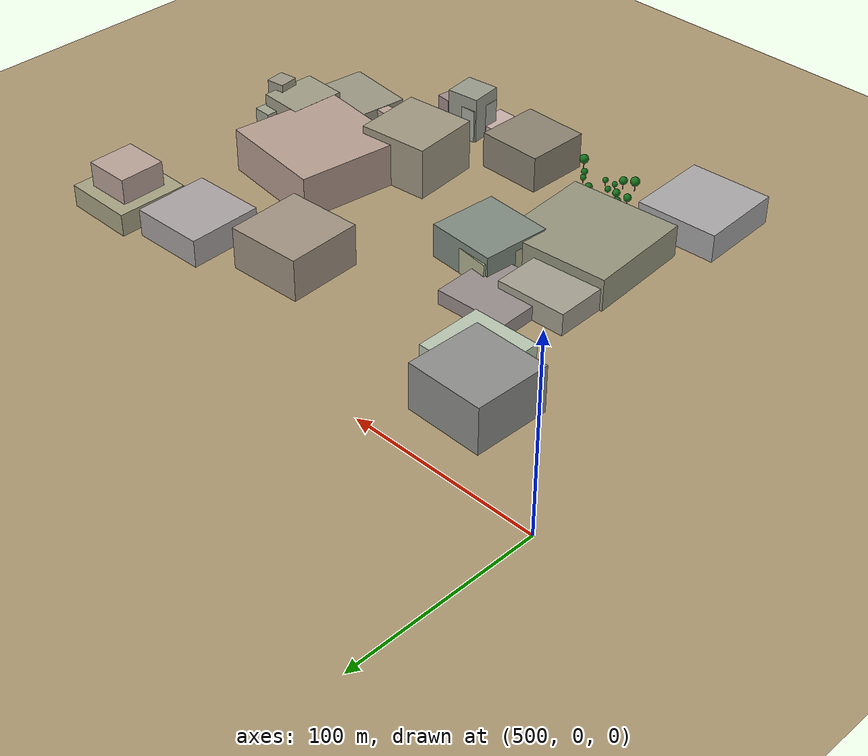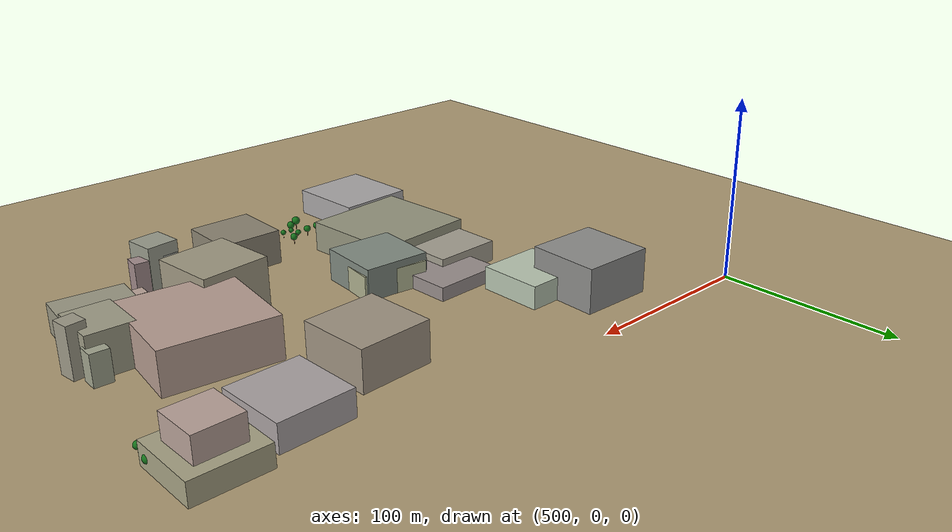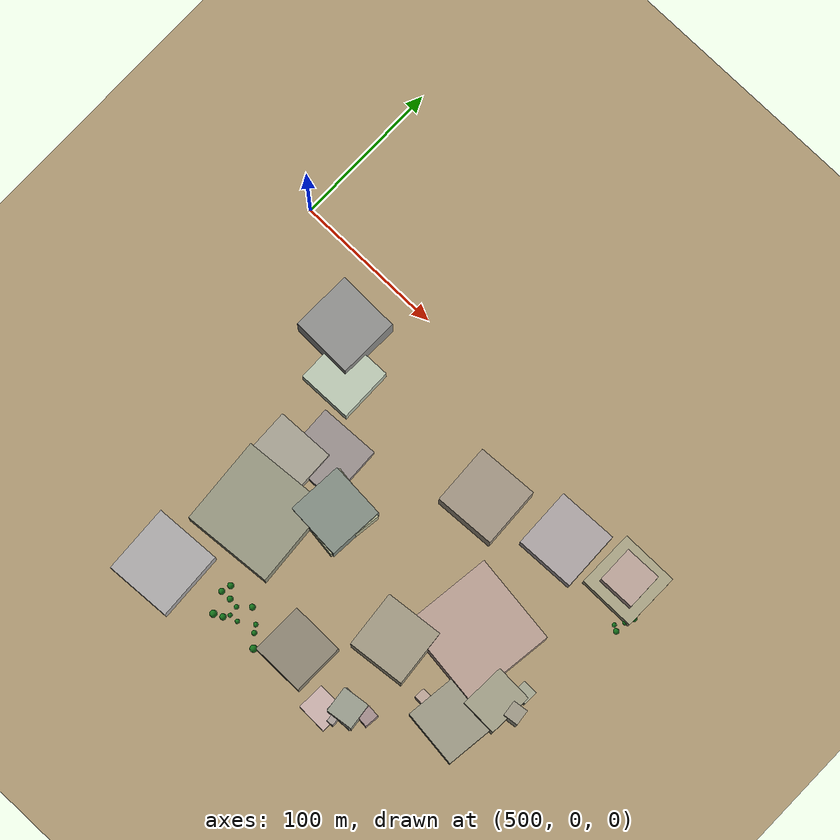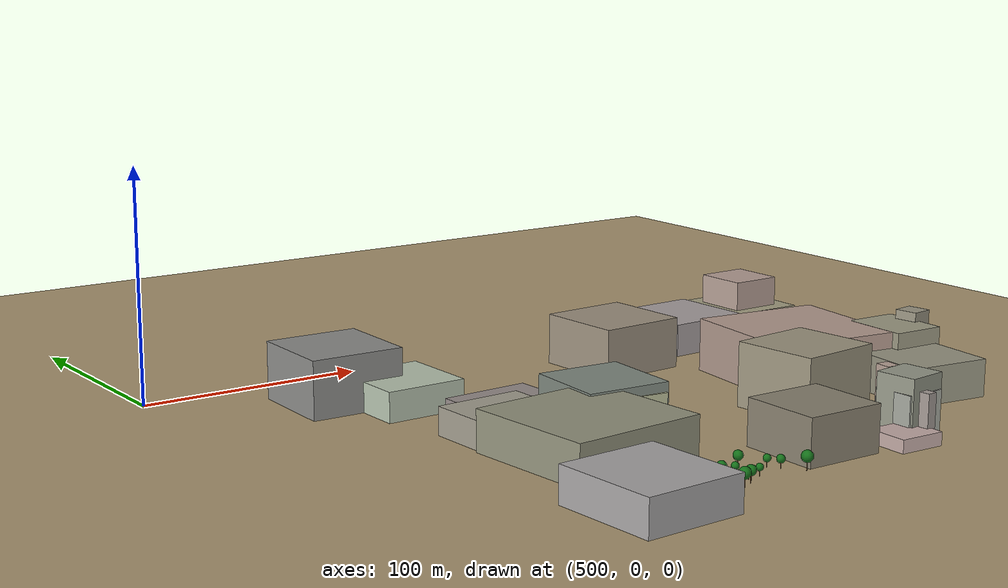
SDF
<sdf version="1.9">
 <world name="crossroad_world">
  <model name="ground_plane">
   <static>true</static>
   <pose>0 0 -0.05 0 0 0</pose>
   <link name="link">
    <collision name="collision">
     <geometry><plane><normal>0 0 1</normal><size>10000 10000</size></plane></geometry>
    </collision>
    <visual name="visual">
     <geometry><plane><normal>0 0 1</normal><size>15000 15000</size></plane></geometry>
     <material><ambient>0.68 0.60 0.45 1</ambient><diffuse>0.68 0.60 0.45 1</diffuse></material>
    </visual>
   </link>
  </model>
  <model name="tree_0">
   <static>true</static>
   <pose>624.872 -207.590 0 0 0 0</pose>
   <link name="link">
    <visual name="trunk">
     <pose>0 0 1.709 0 0 0</pose>
     <geometry><cylinder><radius>0.150</radius><length>3.419</length></cylinder></geometry>
     <material><ambient>0.38 0.22 0.08 1</ambient><diffuse>0.38 0.22 0.08 1</diffuse></material>
    </visual>
    <visual name="canopy">
     <pose>0 0 4.738 0 0 0</pose>
     <geometry><sphere><radius>2.030</radius></sphere></geometry>
     <material><ambient>0.08 0.44 0.10 1</ambient><diffuse>0.08 0.44 0.10 1</diffuse></material>
    </visual>
    <collision name="col">
     <pose>0 0 1.709 0 0 0</pose>
     <geometry><cylinder><radius>0.150</radius><length>3.419</length></cylinder></geometry>
    </collision>
   </link>
  </model>
  <model name="tree_4">
   <static>true</static>
   <pose>645.095 -201.672 0 0 0 0</pose>
   <link name="link">
    <visual name="trunk">
     <pose>0 0 1.697 0 0 0</pose>
     <geometry><cylinder><radius>0.149</radius><length>3.395</length></cylinder></geometry>
     <material><ambient>0.38 0.22 0.08 1</ambient><diffuse>0.38 0.22 0.08 1</diffuse></material>
    </visual>
    <visual name="canopy">
     <pose>0 0 4.705 0 0 0</pose>
     <geometry><sphere><radius>2.016</radius></sphere></geometry>
     <material><ambient>0.08 0.44 0.10 1</ambient><diffuse>0.08 0.44 0.10 1</diffuse></material>
    </visual>
    <collision name="col">
     <pose>0 0 1.697 0 0 0</pose>
     <geometry><cylinder><radius>0.149</radius><length>3.395</length></cylinder></geometry>
    </collision>
   </link>
  </model>
  <model name="tree_9">
   <static>true</static>
   <pose>656.670 -212.168 0 0 0 0</pose>
   <link name="link">
    <visual name="trunk">
     <pose>0 0 1.434 0 0 0</pose>
     <geometry><cylinder><radius>0.125</radius><length>2.867</length></cylinder></geometry>
     <material><ambient>0.38 0.22 0.08 1</ambient><diffuse>0.38 0.22 0.08 1</diffuse></material>
    </visual>
    <visual name="canopy">
     <pose>0 0 3.974 0 0 0</pose>
     <geometry><sphere><radius>1.703</radius></sphere></geometry>
     <material><ambient>0.08 0.44 0.10 1</ambient><diffuse>0.08 0.44 0.10 1</diffuse></material>
    </visual>
    <collision name="col">
     <pose>0 0 1.434 0 0 0</pose>
     <geometry><cylinder><radius>0.125</radius><length>2.867</length></cylinder></geometry>
    </collision>
   </link>
  </model>
  <model name="tree_10">
   <static>true</static>
   <pose>653.817 -207.828 0 0 0 0</pose>
   <link name="link">
    <visual name="trunk">
     <pose>0 0 1.315 0 0 0</pose>
     <geometry><cylinder><radius>0.115</radius><length>2.630</length></cylinder></geometry>
     <material><ambient>0.38 0.22 0.08 1</ambient><diffuse>0.38 0.22 0.08 1</diffuse></material>
    </visual>
    <visual name="canopy">
     <pose>0 0 3.645 0 0 0</pose>
     <geometry><sphere><radius>1.562</radius></sphere></geometry>
     <material><ambient>0.08 0.44 0.10 1</ambient><diffuse>0.08 0.44 0.10 1</diffuse></material>
    </visual>
    <collision name="col">
     <pose>0 0 1.315 0 0 0</pose>
     <geometry><cylinder><radius>0.115</radius><length>2.630</length></cylinder></geometry>
    </collision>
   </link>
  </model>
  <model name="tree_11">
   <static>true</static>
   <pose>636.269 -218.183 0 0 0 0</pose>
   <link name="link">
    <visual name="trunk">
     <pose>0 0 1.768 0 0 0</pose>
     <geometry><cylinder><radius>0.155</radius><length>3.536</length></cylinder></geometry>
     <material><ambient>0.38 0.22 0.08 1</ambient><diffuse>0.38 0.22 0.08 1</diffuse></material>
    </visual>
    <visual name="canopy">
     <pose>0 0 4.901 0 0 0</pose>
     <geometry><sphere><radius>2.100</radius></sphere></geometry>
     <material><ambient>0.08 0.44 0.10 1</ambient><diffuse>0.08 0.44 0.10 1</diffuse></material>
    </visual>
    <collision name="col">
     <pose>0 0 1.768 0 0 0</pose>
     <geometry><cylinder><radius>0.155</radius><length>3.536</length></cylinder></geometry>
    </collision>
   </link>
  </model>
  <model name="tree_13">
   <static>true</static>
   <pose>663.092 -219.238 0 0 0 0</pose>
   <link name="link">
    <visual name="trunk">
     <pose>0 0 2.018 0 0 0</pose>
     <geometry><cylinder><radius>0.177</radius><length>4.035</length></cylinder></geometry>
     <material><ambient>0.38 0.22 0.08 1</ambient><diffuse>0.38 0.22 0.08 1</diffuse></material>
    </visual>
    <visual name="canopy">
     <pose>0 0 5.592 0 0 0</pose>
     <geometry><sphere><radius>2.396</radius></sphere></geometry>
     <material><ambient>0.08 0.44 0.10 1</ambient><diffuse>0.08 0.44 0.10 1</diffuse></material>
    </visual>
    <collision name="col">
     <pose>0 0 2.018 0 0 0</pose>
     <geometry><cylinder><radius>0.177</radius><length>4.035</length></cylinder></geometry>
    </collision>
   </link>
  </model>
  <model name="tree_14">
   <static>true</static>
   <pose>630.842 -220.823 0 0 0 0</pose>
   <link name="link">
    <visual name="trunk">
     <pose>0 0 2.023 0 0 0</pose>
     <geometry><cylinder><radius>0.177</radius><length>4.047</length></cylinder></geometry>
     <material><ambient>0.38 0.22 0.08 1</ambient><diffuse>0.38 0.22 0.08 1</diffuse></material>
    </visual>
    <visual name="canopy">
     <pose>0 0 5.609 0 0 0</pose>
     <geometry><sphere><radius>2.403</radius></sphere></geometry>
     <material><ambient>0.08 0.44 0.10 1</ambient><diffuse>0.08 0.44 0.10 1</diffuse></material>
    </visual>
    <collision name="col">
     <pose>0 0 2.023 0 0 0</pose>
     <geometry><cylinder><radius>0.177</radius><length>4.047</length></cylinder></geometry>
    </collision>
   </link>
  </model>
  <model name="tree_15">
   <static>true</static>
   <pose>638.664 -214.444 0 0 0 0</pose>
   <link name="link">
    <visual name="trunk">
     <pose>0 0 1.208 0 0 0</pose>
     <geometry><cylinder><radius>0.106</radius><length>2.416</length></cylinder></geometry>
     <material><ambient>0.38 0.22 0.08 1</ambient><diffuse>0.38 0.22 0.08 1</diffuse></material>
    </visual>
    <visual name="canopy">
     <pose>0 0 3.349 0 0 0</pose>
     <geometry><sphere><radius>1.435</radius></sphere></geometry>
     <material><ambient>0.08 0.44 0.10 1</ambient><diffuse>0.08 0.44 0.10 1</diffuse></material>
    </visual>
    <collision name="col">
     <pose>0 0 1.208 0 0 0</pose>
     <geometry><cylinder><radius>0.106</radius><length>2.416</length></cylinder></geometry>
    </collision>
   </link>
  </model>
  <model name="tree_16">
   <static>true</static>
   <pose>626.495 -201.350 0 0 0 0</pose>
   <link name="link">
    <visual name="trunk">
     <pose>0 0 1.747 0 0 0</pose>
     <geometry><cylinder><radius>0.153</radius><length>3.493</length></cylinder></geometry>
     <material><ambient>0.38 0.22 0.08 1</ambient><diffuse>0.38 0.22 0.08 1</diffuse></material>
    </visual>
    <visual name="canopy">
     <pose>0 0 4.841 0 0 0</pose>
     <geometry><sphere><radius>2.074</radius></sphere></geometry>
     <material><ambient>0.08 0.44 0.10 1</ambient><diffuse>0.08 0.44 0.10 1</diffuse></material>
    </visual>
    <collision name="col">
     <pose>0 0 1.747 0 0 0</pose>
     <geometry><cylinder><radius>0.153</radius><length>3.493</length></cylinder></geometry>
    </collision>
   </link>
  </model>
  <model name="tree_20">
   <static>true</static>
   <pose>631.842 -207.384 0 0 0 0</pose>
   <link name="link">
    <visual name="trunk">
     <pose>0 0 1.645 0 0 0</pose>
     <geometry><cylinder><radius>0.144</radius><length>3.290</length></cylinder></geometry>
     <material><ambient>0.38 0.22 0.08 1</ambient><diffuse>0.38 0.22 0.08 1</diffuse></material>
    </visual>
    <visual name="canopy">
     <pose>0 0 4.560 0 0 0</pose>
     <geometry><sphere><radius>1.954</radius></sphere></geometry>
     <material><ambient>0.08 0.44 0.10 1</ambient><diffuse>0.08 0.44 0.10 1</diffuse></material>
    </visual>
    <collision name="col">
     <pose>0 0 1.645 0 0 0</pose>
     <geometry><cylinder><radius>0.144</radius><length>3.290</length></cylinder></geometry>
    </collision>
   </link>
  </model>
  <model name="tree_21">
   <static>true</static>
   <pose>637.869 -208.153 0 0 0 0</pose>
   <link name="link">
    <visual name="trunk">
     <pose>0 0 1.317 0 0 0</pose>
     <geometry><cylinder><radius>0.115</radius><length>2.633</length></cylinder></geometry>
     <material><ambient>0.38 0.22 0.08 1</ambient><diffuse>0.38 0.22 0.08 1</diffuse></material>
    </visual>
    <visual name="canopy">
     <pose>0 0 3.649 0 0 0</pose>
     <geometry><sphere><radius>1.563</radius></sphere></geometry>
     <material><ambient>0.08 0.44 0.10 1</ambient><diffuse>0.08 0.44 0.10 1</diffuse></material>
    </visual>
    <collision name="col">
     <pose>0 0 1.317 0 0 0</pose>
     <geometry><cylinder><radius>0.115</radius><length>2.633</length></cylinder></geometry>
    </collision>
   </link>
  </model>
  <model name="tree_23">
   <static>true</static>
   <pose>644.361 -214.057 0 0 0 0</pose>
   <link name="link">
    <visual name="trunk">
     <pose>0 0 1.261 0 0 0</pose>
     <geometry><cylinder><radius>0.110</radius><length>2.521</length></cylinder></geometry>
     <material><ambient>0.38 0.22 0.08 1</ambient><diffuse>0.38 0.22 0.08 1</diffuse></material>
    </visual>
    <visual name="canopy">
     <pose>0 0 3.494 0 0 0</pose>
     <geometry><sphere><radius>1.497</radius></sphere></geometry>
     <material><ambient>0.08 0.44 0.10 1</ambient><diffuse>0.08 0.44 0.10 1</diffuse></material>
    </visual>
    <collision name="col">
     <pose>0 0 1.261 0 0 0</pose>
     <geometry><cylinder><radius>0.110</radius><length>2.521</length></cylinder></geometry>
    </collision>
   </link>
  </model>
  <model name="tree_25">
   <static>true</static>
   <pose>810.908 -58.291 0 0 0 0</pose>
   <link name="link">
    <visual name="trunk">
     <pose>0 0 1.234 0 0 0</pose>
     <geometry><cylinder><radius>0.108</radius><length>2.468</length></cylinder></geometry>
     <material><ambient>0.38 0.22 0.08 1</ambient><diffuse>0.38 0.22 0.08 1</diffuse></material>
    </visual>
    <visual name="canopy">
     <pose>0 0 3.421 0 0 0</pose>
     <geometry><sphere><radius>1.465</radius></sphere></geometry>
     <material><ambient>0.08 0.44 0.10 1</ambient><diffuse>0.08 0.44 0.10 1</diffuse></material>
    </visual>
    <collision name="col">
     <pose>0 0 1.234 0 0 0</pose>
     <geometry><cylinder><radius>0.108</radius><length>2.468</length></cylinder></geometry>
    </collision>
   </link>
  </model>
  <model name="tree_26">
   <static>true</static>
   <pose>814.380 -60.438 0 0 0 0</pose>
   <link name="link">
    <visual name="trunk">
     <pose>0 0 1.614 0 0 0</pose>
     <geometry><cylinder><radius>0.141</radius><length>3.228</length></cylinder></geometry>
     <material><ambient>0.38 0.22 0.08 1</ambient><diffuse>0.38 0.22 0.08 1</diffuse></material>
    </visual>
    <visual name="canopy">
     <pose>0 0 4.474 0 0 0</pose>
     <geometry><sphere><radius>1.917</radius></sphere></geometry>
     <material><ambient>0.08 0.44 0.10 1</ambient><diffuse>0.08 0.44 0.10 1</diffuse></material>
    </visual>
    <collision name="col">
     <pose>0 0 1.614 0 0 0</pose>
     <geometry><cylinder><radius>0.141</radius><length>3.228</length></cylinder></geometry>
    </collision>
   </link>
  </model>
  <model name="tree_27">
   <static>true</static>
   <pose>814.600 -52.722 0 0 0 0</pose>
   <link name="link">
    <visual name="trunk">
     <pose>0 0 1.376 0 0 0</pose>
     <geometry><cylinder><radius>0.120</radius><length>2.751</length></cylinder></geometry>
     <material><ambient>0.38 0.22 0.08 1</ambient><diffuse>0.38 0.22 0.08 1</diffuse></material>
    </visual>
    <visual name="canopy">
     <pose>0 0 3.813 0 0 0</pose>
     <geometry><sphere><radius>1.634</radius></sphere></geometry>
     <material><ambient>0.08 0.44 0.10 1</ambient><diffuse>0.08 0.44 0.10 1</diffuse></material>
    </visual>
    <collision name="col">
     <pose>0 0 1.376 0 0 0</pose>
     <geometry><cylinder><radius>0.120</radius><length>2.751</length></cylinder></geometry>
    </collision>
   </link>
  </model>
  <model name="tree_28">
   <static>true</static>
   <pose>816.436 -47.377 0 0 0 0</pose>
   <link name="link">
    <visual name="trunk">
     <pose>0 0 2.008 0 0 0</pose>
     <geometry><cylinder><radius>0.176</radius><length>4.016</length></cylinder></geometry>
     <material><ambient>0.38 0.22 0.08 1</ambient><diffuse>0.38 0.22 0.08 1</diffuse></material>
    </visual>
    <visual name="canopy">
     <pose>0 0 5.567 0 0 0</pose>
     <geometry><sphere><radius>2.385</radius></sphere></geometry>
     <material><ambient>0.08 0.44 0.10 1</ambient><diffuse>0.08 0.44 0.10 1</diffuse></material>
    </visual>
    <collision name="col">
     <pose>0 0 2.008 0 0 0</pose>
     <geometry><cylinder><radius>0.176</radius><length>4.016</length></cylinder></geometry>
    </collision>
   </link>
  </model>
  <model name="building_140">
   <static>true</static>
   <pose>683.294 -201.566 9.810 0 0 -0.013</pose>
   <link name="link">
    <visual name="body">
     <geometry><box><size>35.34 34.63 19.62</size></box></geometry>
     <material><ambient>0.55 0.52 0.45 1</ambient><diffuse>0.55 0.52 0.45 1</diffuse></material>
    </visual>
    <collision name="col"><geometry><box><size>35.34 34.63 19.62</size></box></geometry></collision>
   </link>
  </model>
  <model name="building_141">
   <static>true</static>
   <pose>717.905 -216.568 2.789 0 0 -0.039</pose>
   <link name="link">
    <visual name="body">
     <geometry><box><size>20.39 18.28 5.58</size></box></geometry>
     <material><ambient>0.79 0.69 0.67 1</ambient><diffuse>0.79 0.69 0.67 1</diffuse></material>
    </visual>
    <collision name="col"><geometry><box><size>20.39 18.28 5.58</size></box></geometry></collision>
   </link>
  </model>
  <model name="building_150">
   <static>true</static>
   <pose>804.292 -139.679 13.791 0 0 0.124</pose>
   <link name="link">
    <visual name="body">
     <geometry><box><size>10.01 10.45 27.58</size></box></geometry>
     <material><ambient>0.62 0.60 0.53 1</ambient><diffuse>0.62 0.60 0.53 1</diffuse></material>
    </visual>
    <collision name="col"><geometry><box><size>10.01 10.45 27.58</size></box></geometry></collision>
   </link>
  </model>
  <model name="building_151">
   <static>true</static>
   <pose>799.862 -126.282 8.564 0 0 -0.030</pose>
   <link name="link">
    <visual name="body">
     <geometry><box><size>9.85 9.45 17.13</size></box></geometry>
     <material><ambient>0.64 0.65 0.56 1</ambient><diffuse>0.64 0.65 0.56 1</diffuse></material>
    </visual>
    <collision name="col"><geometry><box><size>9.85 9.45 17.13</size></box></geometry></collision>
   </link>
  </model>
  <model name="building_152">
   <static>true</static>
   <pose>790.779 -141.961 11.738 0 0 -0.044</pose>
   <link name="link">
    <visual name="body">
     <geometry><box><size>24.54 29.70 23.48</size></box></geometry>
     <material><ambient>0.63 0.62 0.53 1</ambient><diffuse>0.63 0.62 0.53 1</diffuse></material>
    </visual>
    <collision name="col"><geometry><box><size>24.54 29.70 23.48</size></box></geometry></collision>
   </link>
  </model>
  <model name="building_153">
   <static>true</static>
   <pose>757.659 -170.100 8.039 0 0 -0.065</pose>
   <link name="link">
    <visual name="body">
     <geometry><box><size>7.22 7.19 16.08</size></box></geometry>
     <material><ambient>0.74 0.65 0.60 1</ambient><diffuse>0.74 0.65 0.60 1</diffuse></material>
    </visual>
    <collision name="col"><geometry><box><size>7.22 7.19 16.08</size></box></geometry></collision>
   </link>
  </model>
  <model name="building_154">
   <static>true</static>
   <pose>779.830 -166.339 8.183 0 0 -0.120</pose>
   <link name="link">
    <visual name="body">
     <geometry><box><size>38.37 39.12 16.37</size></box></geometry>
     <material><ambient>0.61 0.60 0.52 1</ambient><diffuse>0.61 0.60 0.52 1</diffuse></material>
    </visual>
    <collision name="col"><geometry><box><size>38.37 39.12 16.37</size></box></geometry></collision>
   </link>
  </model>
  <model name="building_195">
   <static>true</static>
   <pose>641.847 -125.631 7.069 0 0 -0.134</pose>
   <link name="link">
    <visual name="body">
     <geometry><box><size>37.46 36.99 14.14</size></box></geometry>
     <material><ambient>0.71 0.72 0.58 1</ambient><diffuse>0.71 0.72 0.58 1</diffuse></material>
    </visual>
    <collision name="col"><geometry><box><size>37.46 36.99 14.14</size></box></geometry></collision>
   </link>
  </model>
  <model name="building_196">
   <static>true</static>
   <pose>641.847 -125.631 9.126 0 0 -0.069</pose>
   <link name="link">
    <visual name="body">
     <geometry><box><size>37.46 36.99 18.25</size></box></geometry>
     <material><ambient>0.51 0.55 0.51 1</ambient><diffuse>0.51 0.55 0.51 1</diffuse></material>
    </visual>
    <collision name="col"><geometry><box><size>37.46 36.99 18.25</size></box></geometry></collision>
   </link>
  </model>
  <model name="building_353">
   <static>true</static>
   <pose>798.478 -33.645 12.727 0 0 0.013</pose>
   <link name="link">
    <visual name="body">
     <geometry><box><size>24.51 24.46 25.45</size></box></geometry>
     <material><ambient>0.73 0.64 0.60 1</ambient><diffuse>0.73 0.64 0.60 1</diffuse></material>
    </visual>
    <collision name="col"><geometry><box><size>24.51 24.46 25.45</size></box></geometry></collision>
   </link>
  </model>
  <model name="building_358">
   <static>true</static>
   <pose>729.810 -206.387 12.470 0 0 0.116</pose>
   <link name="link">
    <visual name="body">
     <geometry><box><size>17.89 17.54 24.94</size></box></geometry>
     <material><ambient>0.60 0.61 0.55 1</ambient><diffuse>0.60 0.61 0.55 1</diffuse></material>
    </visual>
    <collision name="col"><geometry><box><size>17.89 17.54 24.94</size></box></geometry></collision>
   </link>
  </model>
  <model name="building_359">
   <static>true</static>
   <pose>729.810 -206.387 9.096 0 0 0.019</pose>
   <link name="link">
    <visual name="body">
     <geometry><box><size>17.89 17.54 18.19</size></box></geometry>
     <material><ambient>0.67 0.68 0.64 1</ambient><diffuse>0.67 0.68 0.64 1</diffuse></material>
    </visual>
    <collision name="col"><geometry><box><size>17.89 17.54 18.19</size></box></geometry></collision>
   </link>
  </model>
  <model name="building_360">
   <static>true</static>
   <pose>741.468 -201.593 9.158 0 0 -0.099</pose>
   <link name="link">
    <visual name="body">
     <geometry><box><size>7.97 9.62 18.32</size></box></geometry>
     <material><ambient>0.64 0.55 0.55 1</ambient><diffuse>0.64 0.55 0.55 1</diffuse></material>
    </visual>
    <collision name="col"><geometry><box><size>7.97 9.62 18.32</size></box></geometry></collision>
   </link>
  </model>
  <model name="building_361">
   <static>true</static>
   <pose>727.842 -218.023 9.729 0 0 0.079</pose>
   <link name="link">
    <visual name="body">
     <geometry><box><size>4.50 4.45 19.46</size></box></geometry>
     <material><ambient>0.66 0.62 0.60 1</ambient><diffuse>0.66 0.62 0.60 1</diffuse></material>
    </visual>
    <collision name="col"><geometry><box><size>4.50 4.45 19.46</size></box></geometry></collision>
   </link>
  </model>
  <model name="building_638">
   <static>true</static>
   <pose>608.400 -158.281 8.673 0 0 0.074</pose>
   <link name="link">
    <visual name="body">
     <geometry><box><size>60.00 58.64 17.35</size></box></geometry>
     <material><ambient>0.59 0.59 0.50 1</ambient><diffuse>0.59 0.59 0.50 1</diffuse></material>
    </visual>
    <collision name="col"><geometry><box><size>60.00 58.64 17.35</size></box></geometry></collision>
   </link>
  </model>
  <model name="building_639">
   <static>true</static>
   <pose>596.611 -122.459 5.966 0 0 0.031</pose>
   <link name="link">
    <visual name="body">
     <geometry><box><size>38.21 37.37 11.93</size></box></geometry>
     <material><ambient>0.65 0.63 0.57 1</ambient><diffuse>0.65 0.63 0.57 1</diffuse></material>
    </visual>
    <collision name="col"><geometry><box><size>38.21 37.37 11.93</size></box></geometry></collision>
   </link>
  </model>
  <model name="building_640">
   <static>true</static>
   <pose>798.544 -33.656 5.971 0 0 -0.005</pose>
   <link name="link">
    <visual name="body">
     <geometry><box><size>38.28 38.24 11.94</size></box></geometry>
     <material><ambient>0.66 0.64 0.52 1</ambient><diffuse>0.66 0.64 0.52 1</diffuse></material>
    </visual>
    <collision name="col"><geometry><box><size>38.28 38.24 11.94</size></box></geometry></collision>
   </link>
  </model>
  <model name="building_691">
   <static>true</static>
   <pose>588.108 -219.857 7.499 0 0 0.049</pose>
   <link name="link">
    <visual name="body">
     <geometry><box><size>43.89 46.00 15.00</size></box></geometry>
     <material><ambient>0.67 0.66 0.66 1</ambient><diffuse>0.67 0.66 0.66 1</diffuse></material>
    </visual>
    <collision name="col"><geometry><box><size>43.89 46.00 15.00</size></box></geometry></collision>
   </link>
  </model>
  <model name="building_698">
   <static>true</static>
   <pose>614.200 -102.699 3.891 0 0 0.038</pose>
   <link name="link">
    <visual name="body">
     <geometry><box><size>39.68 38.57 7.78</size></box></geometry>
     <material><ambient>0.60 0.56 0.55 1</ambient><diffuse>0.60 0.56 0.55 1</diffuse></material>
    </visual>
    <collision name="col"><geometry><box><size>39.68 38.57 7.78</size></box></geometry></collision>
   </link>
  </model>
  <model name="building_700">
   <static>true</static>
   <pose>567.933 -39.843 12.491 0 0 -0.024</pose>
   <link name="link">
    <visual name="body">
     <geometry><box><size>41.37 40.53 24.98</size></box></geometry>
     <material><ambient>0.56 0.56 0.55 1</ambient><diffuse>0.56 0.56 0.55 1</diffuse></material>
    </visual>
    <collision name="col"><geometry><box><size>41.37 40.53 24.98</size></box></geometry></collision>
   </link>
  </model>
  <model name="building_701">
   <static>true</static>
   <pose>587.818 -61.331 6.486 0 0 0.012</pose>
   <link name="link">
    <visual name="body">
     <geometry><box><size>36.20 36.04 12.97</size></box></geometry>
     <material><ambient>0.73 0.78 0.70 1</ambient><diffuse>0.73 0.78 0.70 1</diffuse></material>
    </visual>
    <collision name="col"><geometry><box><size>36.20 36.04 12.97</size></box></geometry></collision>
   </link>
  </model>
  <model name="building_702">
   <static>true</static>
   <pose>721.906 -157.140 13.854 0 0 0.098</pose>
   <link name="link">
    <visual name="body">
     <geometry><box><size>38.38 37.80 27.71</size></box></geometry>
     <material><ambient>0.63 0.60 0.51 1</ambient><diffuse>0.63 0.60 0.51 1</diffuse></material>
    </visual>
    <collision name="col"><geometry><box><size>38.38 37.80 27.71</size></box></geometry></collision>
   </link>
  </model>
  <model name="building_703">
   <static>true</static>
   <pose>753.698 -119.477 11.725 0 0 -0.126</pose>
   <link name="link">
    <visual name="body">
     <geometry><box><size>59.73 60.00 23.45</size></box></geometry>
     <material><ambient>0.72 0.62 0.57 1</ambient><diffuse>0.72 0.62 0.57 1</diffuse></material>
    </visual>
    <collision name="col"><geometry><box><size>59.73 60.00 23.45</size></box></geometry></collision>
   </link>
  </model>
  <model name="building_704">
   <static>true</static>
   <pose>701.882 -56.650 11.271 0 0 0.049</pose>
   <link name="link">
    <visual name="body">
     <geometry><box><size>40.49 40.26 22.54</size></box></geometry>
     <material><ambient>0.63 0.58 0.51 1</ambient><diffuse>0.63 0.58 0.51 1</diffuse></material>
    </visual>
    <collision name="col"><geometry><box><size>40.49 40.26 22.54</size></box></geometry></collision>
   </link>
  </model>
  <model name="building_707">
   <static>true</static>
   <pose>754.733 -41.707 7.380 0 0 0.030</pose>
   <link name="link">
    <visual name="body">
     <geometry><box><size>39.66 39.63 14.76</size></box></geometry>
     <material><ambient>0.67 0.64 0.64 1</ambient><diffuse>0.67 0.64 0.64 1</diffuse></material>
    </visual>
    <collision name="col"><geometry><box><size>39.66 39.63 14.76</size></box></geometry></collision>
   </link>
  </model>
 </world>
</sdf>
